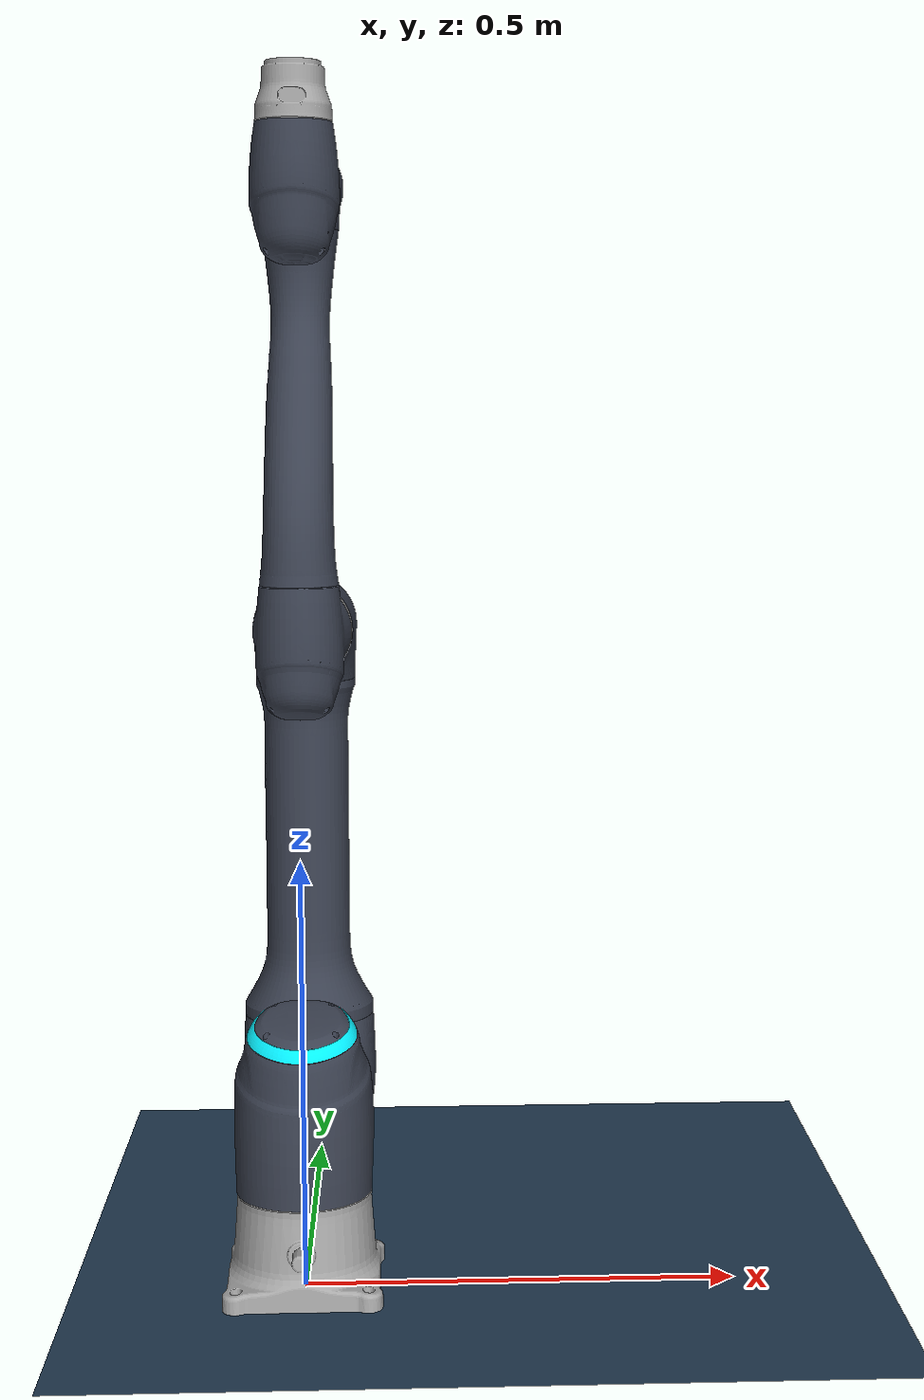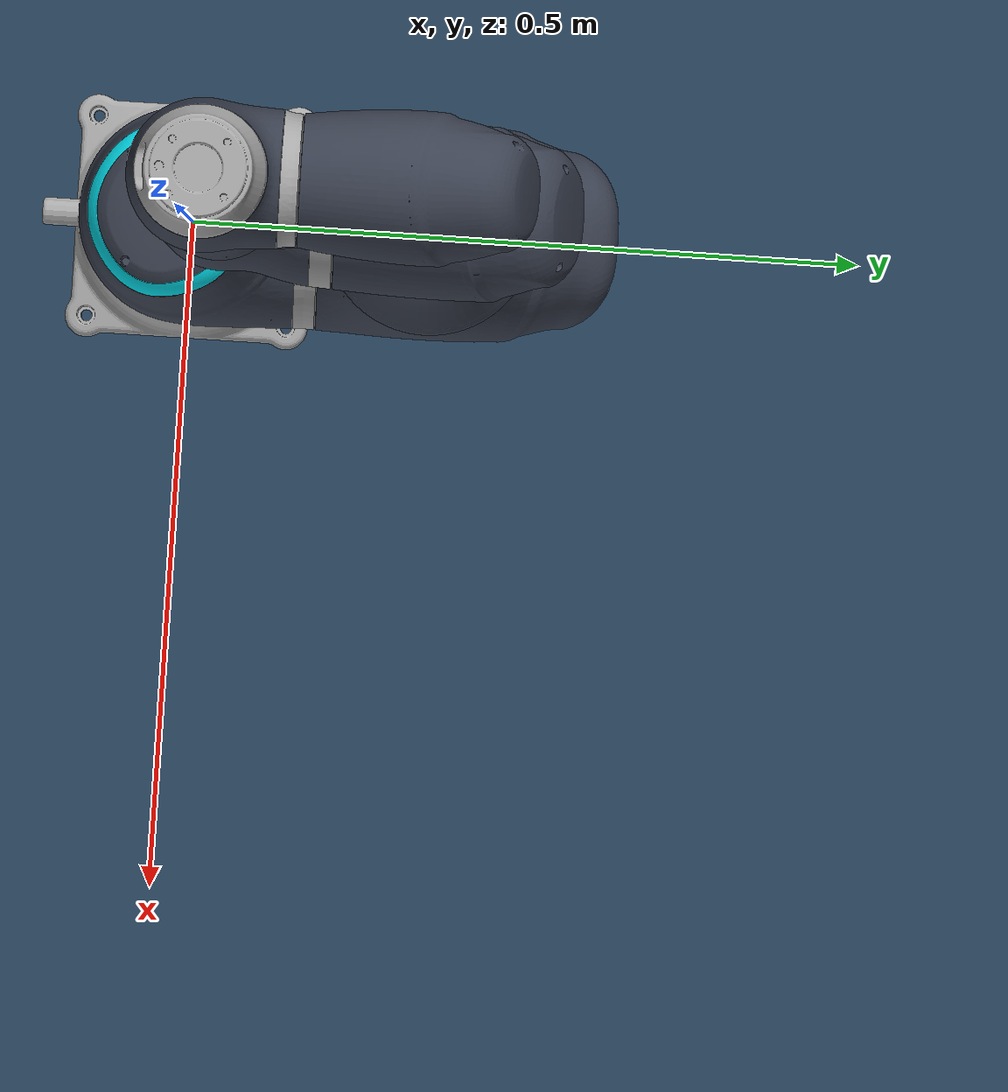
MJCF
<?xml version='1.0' encoding='utf-8'?>
<mujoco model="a0912 scene">
  <include file="a0912.xml" />
  <compiler angle="radian" meshdir="../" />

  <statistic center="0.3 0 0.4" extent="1" />

  <visual>
    <headlight diffuse="0.6 0.6 0.6" ambient="0.3 0.3 0.3" specular="0 0 0" />
    <rgba haze="0.15 0.25 0.35 1" />
    <global azimuth="120" elevation="-20" />
  </visual>

  <asset>
    <texture type="skybox" builtin="gradient" rgb1="0.3 0.5 0.7" rgb2="0 0 0" width="512" height="3072" />
    <texture type="2d" name="groundplane" builtin="checker" mark="edge" rgb1="0.2 0.3 0.4" rgb2="0.1 0.2 0.3" markrgb="0.8 0.8 0.8" width="300" height="300" />
    <material name="groundplane" texture="groundplane" texuniform="true" texrepeat="5 5" reflectance="0.2" />
  </asset>

  <worldbody>
    <light pos="0 0 1.5" dir="0 0 -1" directional="true" />
    <geom name="floor" size="0 0 0.05" type="plane" material="groundplane" />
  </worldbody>

</mujoco>

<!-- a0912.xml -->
<mujoco model="a0912">

  <asset>
    <mesh name="A0912_0_0" file="a0912/assets/A0912_0_0.stl" scale="0.001 0.001 0.001"/>
    <mesh name="A0912_1_0" file="a0912/assets/A0912_1_0.stl" scale="0.001 0.001 0.001"/>
    <mesh name="A0912_1_1" file="a0912/assets/A0912_1_1.stl" scale="0.001 0.001 0.001"/>
    <mesh name="A0912_1_2" file="a0912/assets/A0912_1_2.stl" scale="0.001 0.001 0.001"/>
    <mesh name="A0912_2_0" file="a0912/assets/A0912_2_0.stl" scale="0.001 0.001 0.001"/>
    <mesh name="A0912_2_1" file="a0912/assets/A0912_2_1.stl" scale="0.001 0.001 0.001"/>
    <mesh name="A0912_2_2" file="a0912/assets/A0912_2_2.stl" scale="0.001 0.001 0.001"/>
    <mesh name="A0912_3_0" file="a0912/assets/A0912_3_0.stl" scale="0.001 0.001 0.001"/>
    <mesh name="A0912_3_1" file="a0912/assets/A0912_3_1.stl" scale="0.001 0.001 0.001"/>
    <mesh name="A0912_4_0" file="a0912/assets/A0912_4_0.stl" scale="0.001 0.001 0.001"/>
    <mesh name="A0912_4_1" file="a0912/assets/A0912_4_1.stl" scale="0.001 0.001 0.001"/>
    <mesh name="A0912_5_0" file="a0912/assets/A0912_5_0.stl" scale="0.001 0.001 0.001"/>
    <mesh name="A0912_5_1" file="a0912/assets/A0912_5_1.stl" scale="0.001 0.001 0.001"/>
    <mesh name="A0912_6_0" file="a0912/assets/A0912_6_0.stl" scale="0.001 0.001 0.001"/>

    <material name="blue" rgba="0.227 0.251 0.31 1"/>
    <material name="metal" rgba="0.65 0.65 0.65 1"/>
    <material name="sky_blue" rgba="0.016 0.933 0.992 1.0"/>
  </asset>

  <worldbody>
    <geom type="mesh" contype="1" conaffinity="1" group="1" density="0" mesh="A0912_0_0" material="metal"/>
    <body name="link_1" pos="0 0 0.195">
      <inertial pos="4.4e-05 0.029982 -0.01112" quat="0.616973 0.786523 0.0212897 -0.0165244" mass="7.863" diaginertia="0.0458411 0.0451317 0.0321783"/>
      <joint name="joint_1" pos="0 0 0" axis="0 0 1" range="-6.2832 6.2832" actuatorfrcrange="-411 411" damping="1200"/>
      <geom type="mesh" contype="1" conaffinity="1" group="1" density="0" mesh="A0912_1_0" material="metal"/>
      <geom type="mesh" contype="1" conaffinity="1" group="1" density="0" mesh="A0912_1_1" material="blue"/>
      <geom type="mesh" contype="1" conaffinity="1" group="1" density="0" mesh="A0912_1_2" material="sky_blue"/>
      <body name="link_2" pos="0 0.039 0" quat="0.499898 -0.500102 -0.5 -0.5">
        <inertial pos="0.19748 0.001426 0.13191" quat="0.494865 0.500903 0.49028 0.513644" mass="10.985" diaginertia="0.676461 0.67447 0.0442288"/>
        <joint name="joint_2" pos="0 0 0" axis="0 0 1" range="-6.2832 6.2832" actuatorfrcrange="-411 411" damping="1200"/>
        <geom type="mesh" contype="1" conaffinity="1" group="1" density="0" mesh="A0912_2_0" material="blue"/>
        <geom type="mesh" contype="1" conaffinity="1" group="1" density="0" mesh="A0912_2_1" material="blue"/>
        <geom type="mesh" contype="1" conaffinity="1" group="1" density="0" mesh="A0912_2_2" material="blue"/>
        <body name="link_3" pos="0.56 0 0" quat="0.707035 0 0 0.707179">
          <inertial pos="8.5e-05 -0.002513 0.032058" quat="0.99956 -0.0295295 -0.00177705 -0.00235181" mass="2.881" diaginertia="0.0127561 0.0114277 0.00805338"/>
          <joint name="joint_3" pos="0 0 0" axis="0 0 1" range="-2.7925 2.7925" actuatorfrcrange="-194 194" damping="900"/>
          <geom type="mesh" contype="1" conaffinity="1" group="1" density="0" mesh="A0912_3_0" material="metal"/>
          <geom type="mesh" contype="1" conaffinity="1" group="1" density="0" mesh="A0912_3_1" material="blue"/>
          <body name="link_4" pos="0 -0.516 0" quat="0.707035 0.707179 0 0">
            <inertial pos="-9.6e-05 0.085314 -0.13975" quat="0.991273 -0.131746 0.000466759 0.00453423" mass="3.273" diaginertia="0.12246 0.120645 0.00961083"/>
            <joint name="joint_4" pos="0 0 0" axis="0 0 1" range="-6.2832 6.2832" actuatorfrcrange="-50 50" damping="600"/>
            <geom type="mesh" contype="1" conaffinity="1" group="1" density="0" mesh="A0912_4_0" material="blue"/>
            <geom type="mesh" contype="1" conaffinity="1" group="1" density="0" mesh="A0912_4_1" material="blue"/>
            <body name="link_5" quat="0.707035 -0.707179 0 0">
              <inertial pos="0.000109 -0.003286 0.01477" quat="0.694836 0.719167 -0.00102984 0.000469357" mass="2.141" diaginertia="0.013145 0.00904965 0.00730513"/>
              <joint name="joint_5" pos="0 0 0" axis="0 0 1" range="-6.2832 6.2832" actuatorfrcrange="-50 50" damping="600"/>
              <geom type="mesh" contype="1" conaffinity="1" group="1" density="0" mesh="A0912_5_0" material="metal"/>
              <geom type="mesh" contype="1" conaffinity="1" group="1" density="0" mesh="A0912_5_1" material="blue"/>
              <body name="link_6" pos="0 -0.124 0" quat="0.707035 0.707179 0 0">
                <inertial pos="-1.9e-05 -6e-06 -0.05227" quat="0.709629 0.704572 -0.0002028 0.00211458" mass="0.784" diaginertia="0.00674032 0.00596965 0.00480143"/>
                <joint name="joint_6" pos="0 0 0" axis="0 0 1" range="-6.2832 6.2832" actuatorfrcrange="-50 50" damping="600"/>
                <geom type="mesh" contype="1" conaffinity="1" group="1" density="0" mesh="A0912_6_0" material="metal"/>
              </body>
            </body>
          </body>
        </body>
      </body>
    </body>
  </worldbody>

	<actuator>
		<position joint="joint_1" kp="10" kv="1" ctrlrange="-6.2832 6.2832"/>
		<position joint="joint_2" kp="10" kv="1" ctrlrange="-6.2832 6.2832"/>
		<position joint="joint_3" kp="10" kv="1" ctrlrange="-2.7925 2.7925"/>
		<position joint="joint_4" kp="10" kv="1" ctrlrange="-6.2832 6.2832"/>
		<position joint="joint_5" kp="10" kv="1" ctrlrange="-6.2832 6.2832"/>
		<position joint="joint_6" kp="10" kv="1" ctrlrange="-6.2832 6.2832"/>
	</actuator>
</mujoco>
